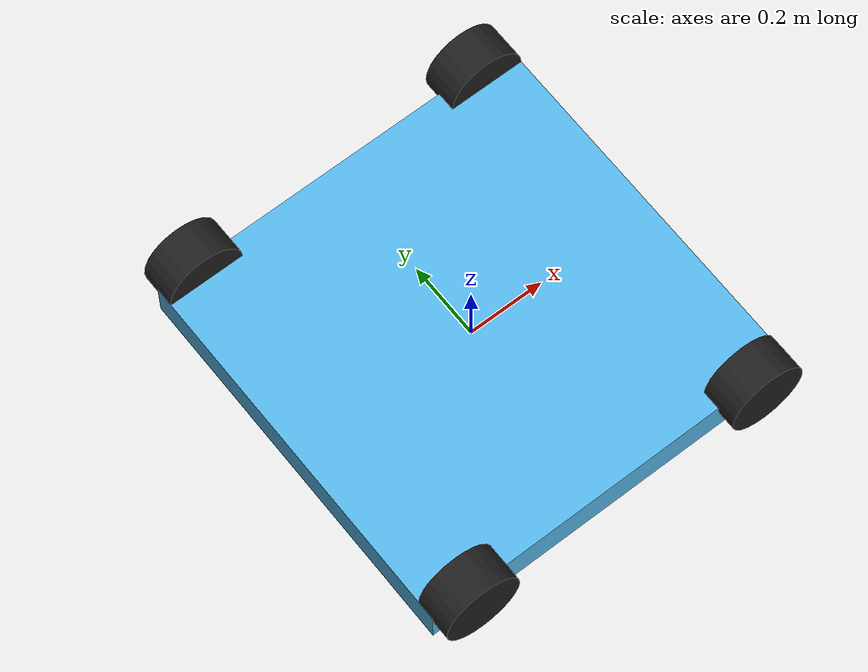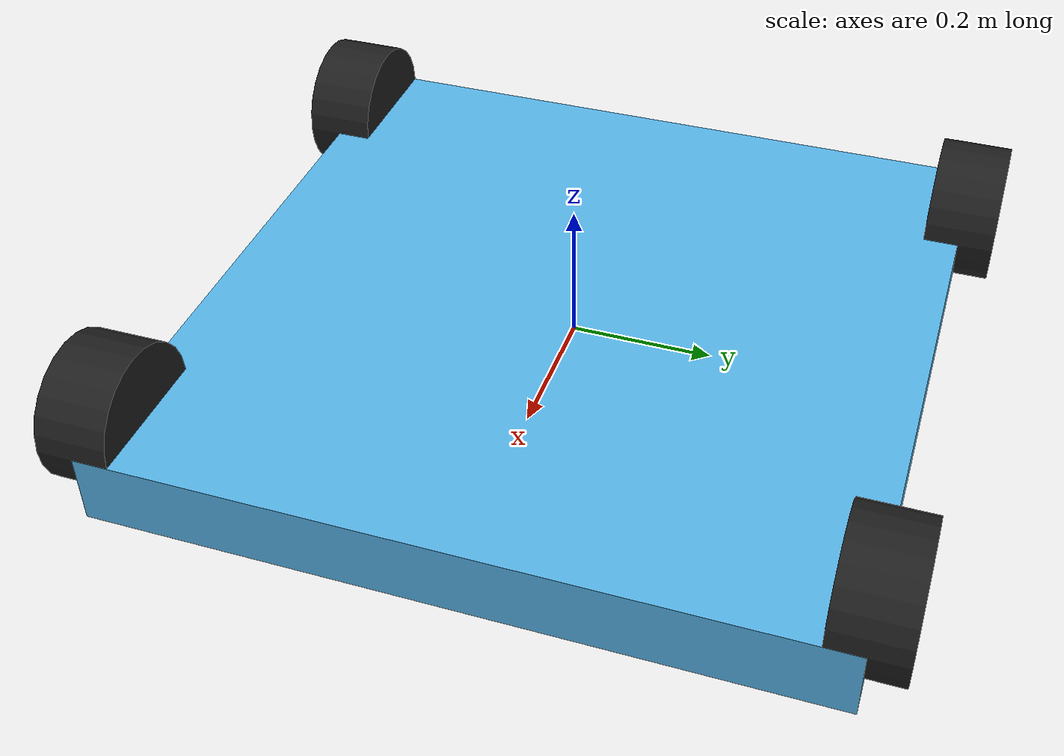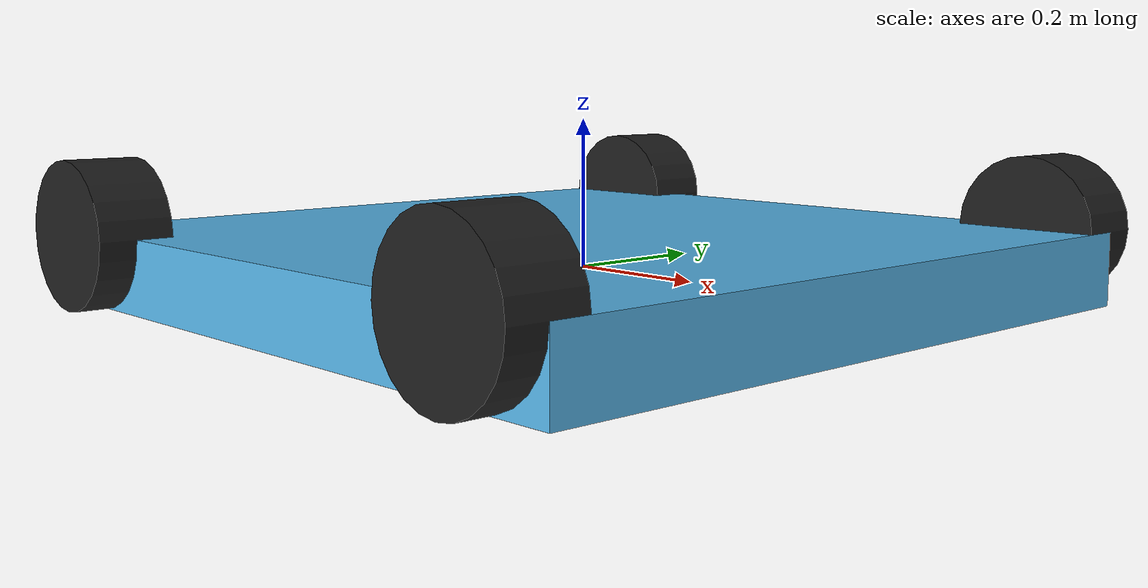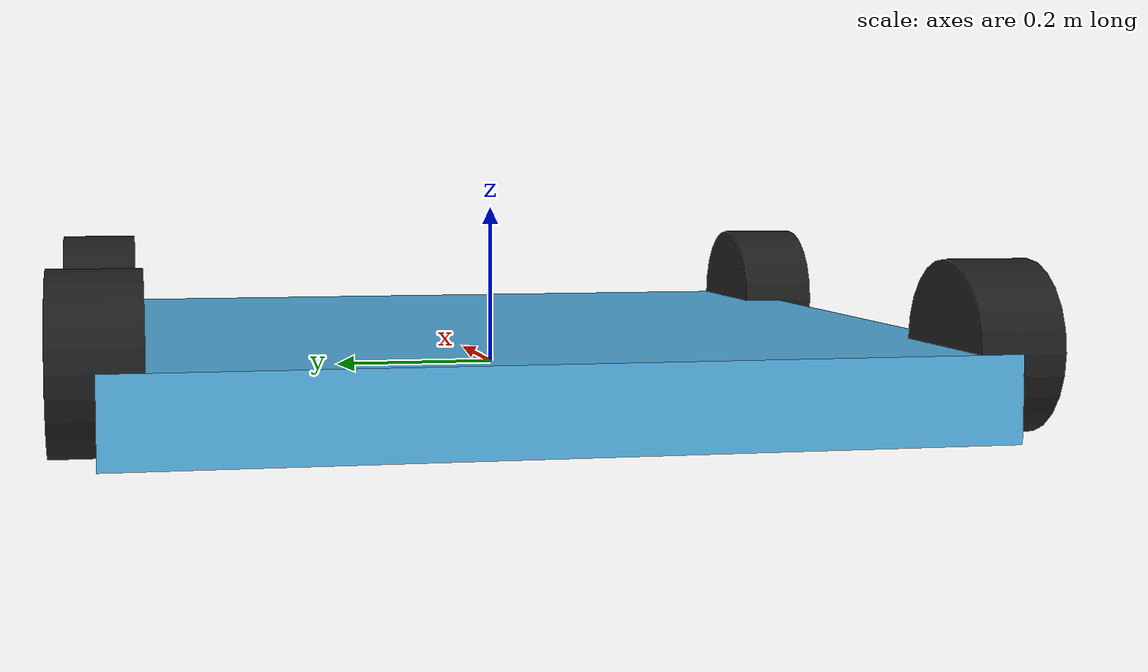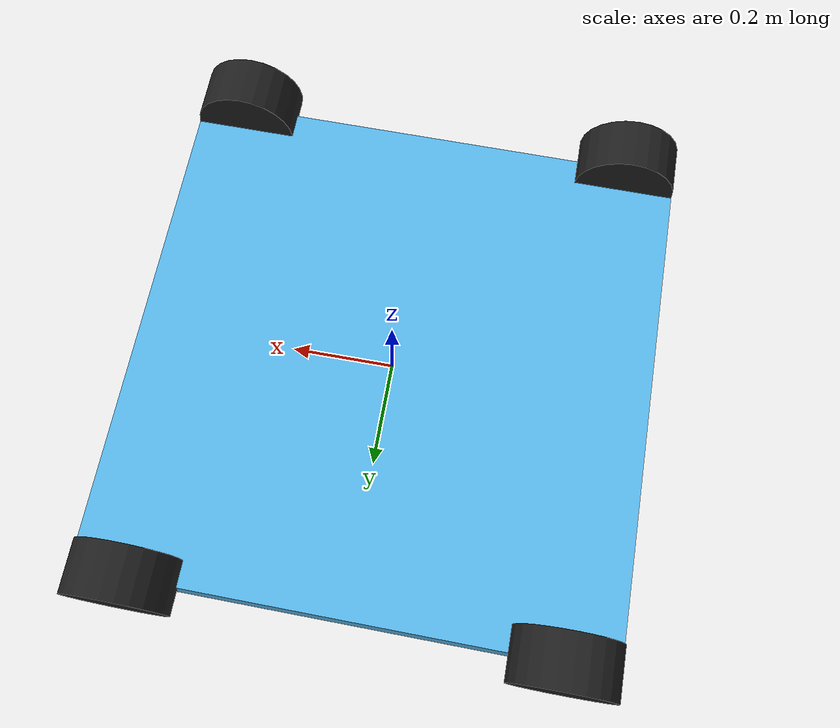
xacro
<?xml version="1.0"?>
<robot xmlns:xacro="http://www.ros.org/wiki/xacro" name="basic_robot">

<param name="robot_description"
  command="xacro '$(find new_robot_urdf)/urdf/myrobot.urdf.xacro'" />

<!--colors-->
<material name ="blue">
    <color rgba=" 0 0 0.8 1"/>
</material>

<!--All Xacro Macros-->

<!--xacro macro for base-->
<xacro:property name="length" value="1.0" />
<xacro:property name="width" value="1.0" />
<xacro:property name="height" value="0.1" />
<xacro:property name="base_origin" value="0 0 0.1" />

<!--xacro macro for inertia base-->
<xacro:macro name="base_inertial" params="mass">
    <inertial>
      <mass value="${mass}" />
      <inertia ixx="1.0" ixy="0.0" ixz="0.0" iyy="1.0" iyz="0.0" izz="1.0" />
    </inertial>
</xacro:macro>

<!--Wheel Macros-->
<xacro:property name="wheel_origin_rpy" value="1.57075 0 0" />
<xacro:property name="wheel_len" value="0.1" />
<xacro:property name="wheel_radius" value="0.1" />

<!--xacro macro for inertia wheels-->
<xacro:macro name="wheel_inertia" params="mass">
    <inertial>
      <mass value="${mass}" />
    <inertia ixx="1.0" ixy="0.0" ixz="0.0" iyy="1.0" iyz="0.0" izz="1.0"/>
    </inertial>
</xacro:macro>

<!--xacro macro for right_front_wheel_joint-->
<xacro:property name="wheel_axis" value="0 1 0" />
<xacro:property name="right_front_wheel_joint_xyz" value="0.40 0.5 0.1" />

<!--xacro macro for left_front_wheel_joint-->
<xacro:property name="left_front_wheel_joint_xyz" value="0.4 -0.5 0.1" />

<!--xacro macro for right_back_wheel_joint-->
<xacro:property name="right_back_wheel_joint_xyz" value="-0.4 0.5 0.1" />

<!--xacro macro for left_back_wheel_joint-->
<xacro:property name="left_back_wheel_joint_xyz" value="-0.4 -0.5 0.1" />

<!-- Dummy link to get rid of  base_link has an inertia specified in the URDF error -->
<link name="dummy"/>

<!-- Dummy joint to get rid of  base_link has an inertia specified in the URDF error -->
<joint name="dummy_joint" type="fixed">
  <parent link="dummy" />
  <child link="base_link" />
</joint>

<link name="base_link">
    <visual>
      <geometry>
         <box size="${length} ${width} ${height}"/>
      </geometry>
    </visual>
    <collision>
      <geometry>
         <box size="${length} ${width} ${height}"/>
      </geometry>
    </collision>
    <xacro:base_inertial mass="10"/>
</link>

  <!-- create a xacro macro for the wheels links -->
  <xacro:macro name="wheel" params="prefix suffix reflect_x reflect_y reflect_z">
      <link name="${prefix}_${suffix}_wheel">
          <visual>
            <origin xyz="0 0 0" rpy="${pi/2} 0 0" />
            <geometry>
              <cylinder radius="${wheel_radius}" length="${wheel_len}"/>
            </geometry>
            <material name="black"/>
          </visual>
          <collision>
            <origin xyz="0 0 0" rpy="${pi/2} 0 0" />
            <geometry>
              <cylinder radius="${wheel_radius}" length="${wheel_len}"/>
            </geometry>
          </collision>
          <xacro:wheel_inertia mass="1"/>
      </link>
      <!-- create xacro macro fo wheel joint -->
      <joint name="${prefix}_${suffix}_wheel_joint" type="continuous">
          <axis xyz="${wheel_axis}" rpy="0 0 0" />
          <parent link="base_link"/>
          <child link="${prefix}_${suffix}_wheel"/>
          <origin xyz="${reflect_x * 0.4} ${reflect_y * 0.5} ${reflect_z * 0.05}" rpy="0 0 0"/>
      </joint>

      <!-- This block provides the simulator (Gazebo) with information on a few additional
      physical properties. See http://gazebosim.org/tutorials/?tut=ros_urdf for more-->
      <gazebo reference="${prefix}_${suffix}_wheel">
        <mu1 value="200.0"/>
        <mu2 value="100.0"/>
        <kp value="10000000.0" />
        <kd value="1.0" />
        <material>Gazebo/Grey</material>
      </gazebo>

      <!-- This block connects the wheel joint to an actuator (motor), which informs both
          simulation and visualization of the robot -->
      <transmission name="${prefix}_${suffix}_wheel_trans">
        <type>transmission_interface/SimpleTransmission</type>
        <actuator name="${prefix}_${suffix}_wheel_motor">
          <mechanicalReduction>1</mechanicalReduction>
        </actuator>
        <joint name="${prefix}_${suffix}_wheel_joint">
          <hardwareInterface>hardware_interface/VelocityJointInterface</hardwareInterface>
        </joint>
      </transmission>

  </xacro:macro>

<!--wheel/joint_0 code inspired from -->
<!-- https://github.com/ZBO-R8io/Roberto/blob/main/backups/lunarbot/urdf/lunarbot.xacro -->
<!-- change these values -->
  <xacro:wheel prefix="right" suffix="0" reflect_x="1" reflect_y="1" reflect_z="1" />
  <!--wheel/joint_1-->
  <xacro:wheel prefix="left" suffix="1" reflect_x="1" reflect_y="-1" reflect_z="1" />
  <!--wheel/joint_2-->
  <xacro:wheel prefix="right" suffix="2" reflect_x="-1" reflect_y="1" reflect_z="1" />
  <!--wheel/joint_3-->
  <xacro:wheel prefix="left" suffix="3" reflect_x="-1" reflect_y="-1" reflect_z="1" />

  <!-- Gazebo plugin for ROS Control -->
  <gazebo>
    <plugin name="gazebo_ros_control" filename="libgazebo_ros_control.so">
      <robotNamespace>/</robotNamespace>
    </plugin>
  </gazebo>

</robot>
